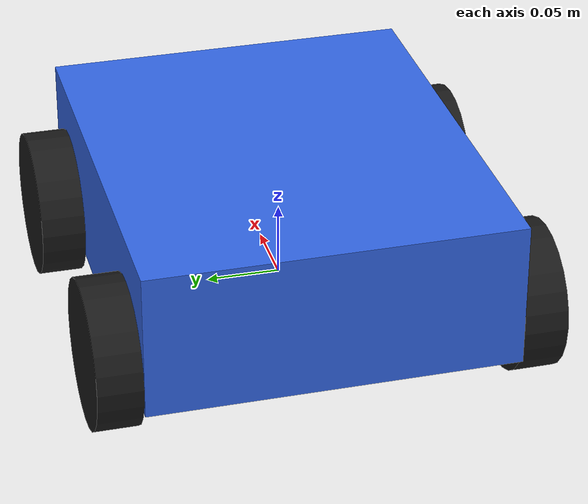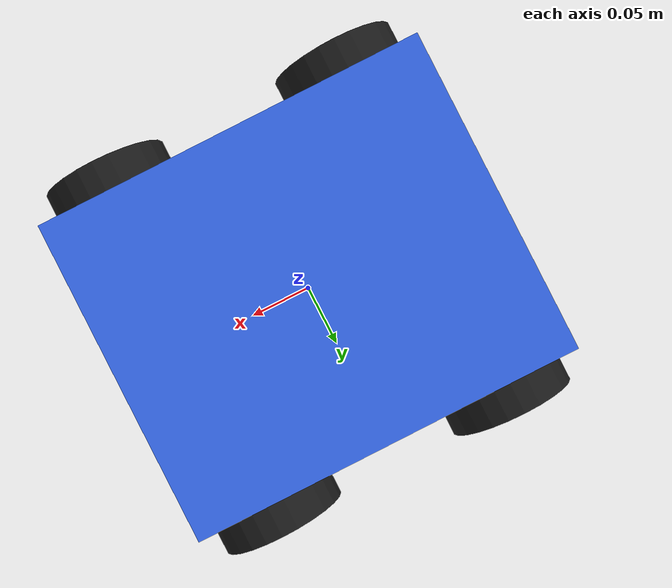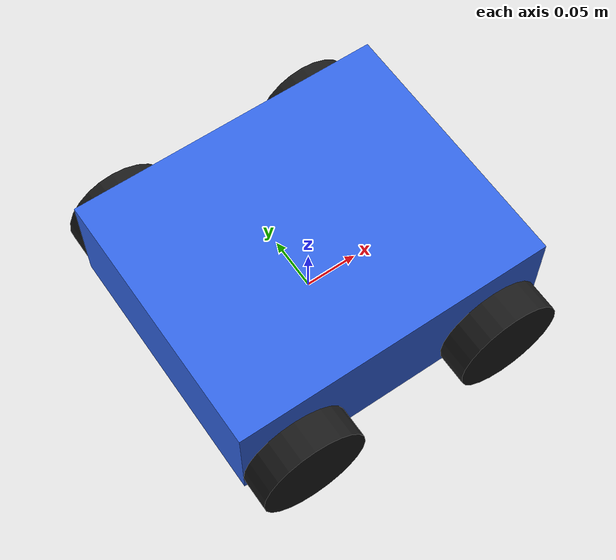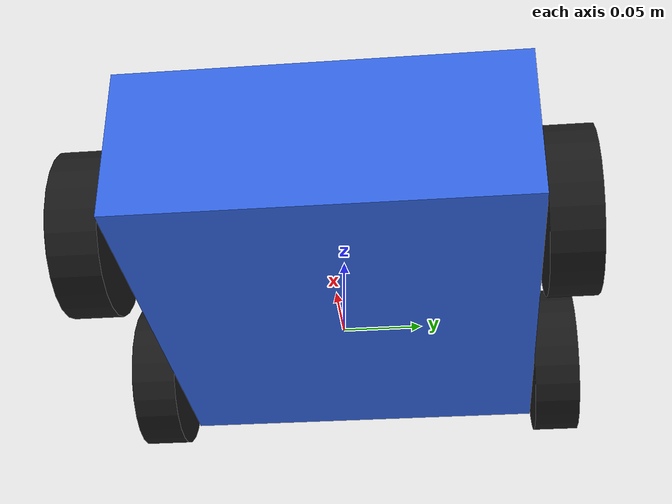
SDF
<?xml version='1.0'?>
<sdf version='1.9'>
  <model name='simple_ground_robot'>
    <pose>0 0 0.05 0 0 0</pose>
    <self_collide>false</self_collide>

    <link name='chassis'>
      <inertial>
        <mass>2.0</mass>
        <inertia>
          <ixx>0.03</ixx><iyy>0.05</iyy><izz>0.06</izz>
          <ixy>0</ixy><ixz>0</ixz><iyz>0</iyz>
        </inertia>
      </inertial>
      <collision name='chassis_collision'>
        <geometry><box><size>0.30 0.25 0.10</size></box></geometry>
      </collision>
      <visual name='chassis_visual'>
        <geometry><box><size>0.30 0.25 0.10</size></box></geometry>
        <material><ambient>0.15 0.35 0.85 1</ambient><diffuse>0.2 0.4 0.9 1</diffuse></material>
      </visual>
      <!-- four cosmetic wheel visuals; VelocityControl drives the whole
           body directly, no wheel-joint kinematics needed for this
           case-study visualization -->
      <visual name='wheel_fl'>
        <pose>0.10 0.14 -0.03 1.5708 0 0</pose>
        <geometry><cylinder><radius>0.05</radius><length>0.03</length></cylinder></geometry>
        <material><ambient>0.1 0.1 0.1 1</ambient></material>
      </visual>
      <visual name='wheel_fr'>
        <pose>0.10 -0.14 -0.03 1.5708 0 0</pose>
        <geometry><cylinder><radius>0.05</radius><length>0.03</length></cylinder></geometry>
        <material><ambient>0.1 0.1 0.1 1</ambient></material>
      </visual>
      <visual name='wheel_bl'>
        <pose>-0.10 0.14 -0.03 1.5708 0 0</pose>
        <geometry><cylinder><radius>0.05</radius><length>0.03</length></cylinder></geometry>
        <material><ambient>0.1 0.1 0.1 1</ambient></material>
      </visual>
      <visual name='wheel_br'>
        <pose>-0.10 -0.14 -0.03 1.5708 0 0</pose>
        <geometry><cylinder><radius>0.05</radius><length>0.03</length></cylinder></geometry>
        <material><ambient>0.1 0.1 0.1 1</ambient></material>
      </visual>
    </link>

    <!-- Same verified plugin block as simple_drone/model.sdf — see that
         file's comment for how filenames/class-names were confirmed
         against the actual installed Gazebo (Ignition Fortress). -->
    <plugin filename="ignition-gazebo-velocity-control-system"
            name="gz::sim::systems::VelocityControl">
    </plugin>

    <plugin filename="ignition-gazebo-odometry-publisher-system"
            name="ignition::gazebo::systems::OdometryPublisher">
      <dimensions>3</dimensions>
    </plugin>

    <plugin filename="ignition-gazebo-pose-publisher-system"
            name="gz::sim::systems::PosePublisher">
      <publish_link_pose>true</publish_link_pose>
      <publish_collision_pose>false</publish_collision_pose>
      <publish_visual_pose>false</publish_visual_pose>
      <publish_nested_model_pose>false</publish_nested_model_pose>
    </plugin>
  </model>
</sdf>
